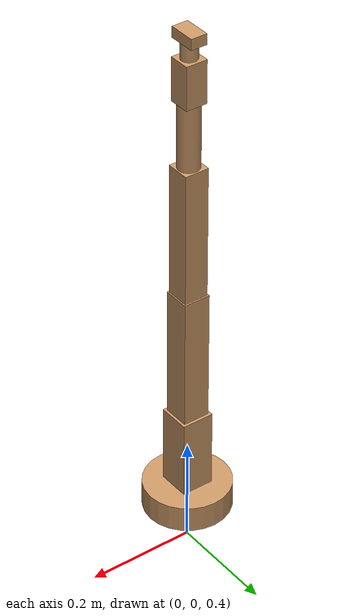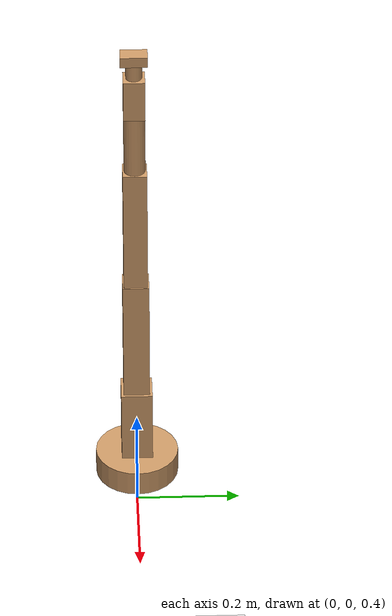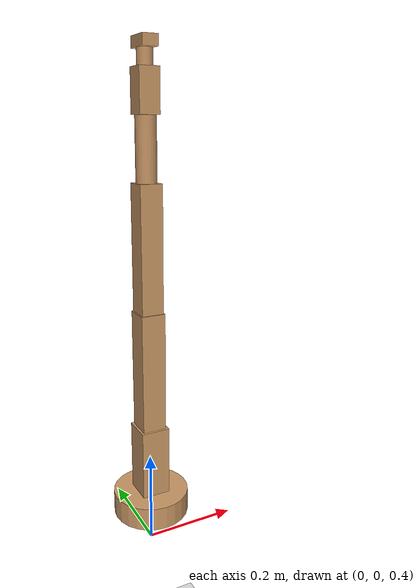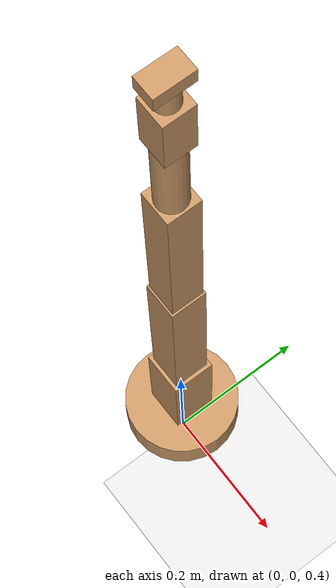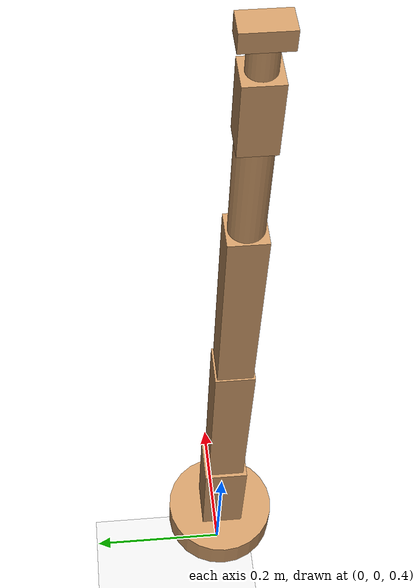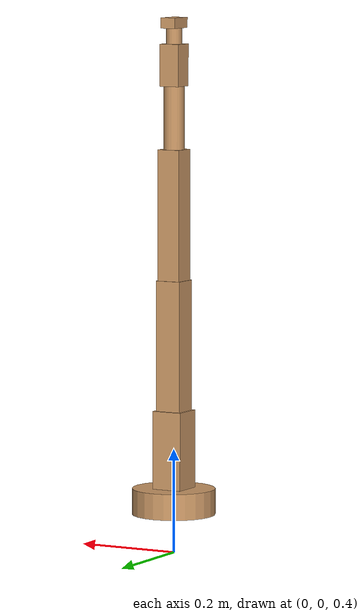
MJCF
<?xml version='1.0' encoding='utf-8'?>
<mujoco model="robotic_arm_6dof">
  <compiler angle="radian" meshdir="D:\ROS2_PROJECT\robotstudio\examples\robotic_arm_6dof\meshes" autolimits="true" />
  <option timestep="0.001" gravity="0 0 -9.81" />
  <default>
    <geom rgba="0.8 0.6 0.4 1" friction="1 0.5 0.5" />
  </default>
  <asset>
    <material name="grey" rgba="0.5 0.5 0.5 1.0" />
    <material name="blue" rgba="0.2 0.3 0.8 1.0" />
    <material name="orange" rgba="0.9 0.5 0.2 1.0" />
    <material name="green" rgba="0.2 0.8 0.3 1.0" />
    <material name="yellow" rgba="0.9 0.9 0.2 1.0" />
    <material name="purple" rgba="0.7 0.2 0.7 1.0" />
    <material name="cyan" rgba="0.2 0.8 0.8 1.0" />
    <material name="red" rgba="0.8 0.2 0.2 1.0" />
  </asset>
  <worldbody>
    <light diffuse="0.5 0.5 0.5" pos="0 0 3" dir="0 0 -1" />
    <geom name="floor" type="plane" size="0 0 1" rgba="0.9 0.9 0.9 1" />
    <body name="base_link" pos="0 0 0.5">
      <freejoint name="base_link_freejoint" />
      <inertial mass="2.0" pos="0 0 0" fullinertia="0.01 0.01 0.01 0 0 0" />
      <geom name="base_link_visual" type="cylinder" group="0" size="0.08 0.025" material="grey" />
      <geom name="base_link_collision" type="cylinder" group="3" rgba="0.5 0.5 0.5 0.3" size="0.08 0.025" />
      <body name="link1" pos="0 0 0.025">
        <joint name="joint1" type="hinge" axis="0 0 1" range="-3.14 3.14" />
        <inertial mass="1.0" pos="0 0 0" fullinertia="0.01 0.01 0.01 0 0 0" />
        <geom name="link1_visual" type="box" group="0" pos="0 0 0.075" size="0.03 0.03 0.075" material="blue" />
        <body name="link2" pos="0 0 0.15">
          <joint name="joint2" type="hinge" axis="0 1 0" range="-1.57 1.57" />
          <inertial mass="0.8" pos="0 0 0" fullinertia="0.008 0.008 0.008 0 0 0" />
          <geom name="link2_visual" type="box" group="0" pos="0 0 0.125" size="0.025 0.025 0.125" material="orange" />
          <body name="link3" pos="0 0 0.25">
            <joint name="joint3" type="hinge" axis="0 1 0" range="-1.57 1.57" />
            <inertial mass="0.6" pos="0 0 0" fullinertia="0.006 0.006 0.006 0 0 0" />
            <geom name="link3_visual" type="box" group="0" pos="0 0 0.125" size="0.0225 0.0225 0.125" material="green" />
            <body name="link4" pos="0 0 0.25">
              <joint name="joint4" type="hinge" axis="0 0 1" range="-3.14 3.14" />
              <inertial mass="0.3" pos="0 0 0" fullinertia="0.003 0.003 0.003 0 0 0" />
              <geom name="link4_visual" type="cylinder" group="0" pos="0 0 0.06" size="0.02 0.06" material="yellow" />
              <body name="link5" pos="0 0 0.12">
                <joint name="joint5" type="hinge" axis="0 1 0" range="-1.57 1.57" />
                <inertial mass="0.2" pos="0 0 0" fullinertia="0.002 0.002 0.002 0 0 0" />
                <geom name="link5_visual" type="box" group="0" pos="0 0 0.04" size="0.02 0.02 0.04" material="purple" />
                <body name="link6" pos="0 0 0.08">
                  <joint name="joint6" type="hinge" axis="0 0 1" range="-3.14 3.14" />
                  <inertial mass="0.1" pos="0 0 0" fullinertia="0.001 0.001 0.001 0 0 0" />
                  <geom name="link6_visual" type="cylinder" group="0" pos="0 0 0.02" size="0.015 0.02" material="cyan" />
                  <body name="ee_link" pos="0 0 0.04">
                    <inertial mass="0.05" pos="0 0 0" fullinertia="0.0005 0.0005 0.0005 0 0 0" />
                    <geom name="ee_link_visual" type="box" group="0" size="0.015 0.025 0.01" material="red" />
                  </body>
                </body>
              </body>
            </body>
          </body>
        </body>
      </body>
    </body>
  </worldbody>
  <actuator>
    <position name="joint1_motor" joint="joint1" kp="10" ctrlrange="-100 100" />
    <position name="joint2_motor" joint="joint2" kp="10" ctrlrange="-80 80" />
    <position name="joint3_motor" joint="joint3" kp="10" ctrlrange="-60 60" />
    <position name="joint4_motor" joint="joint4" kp="10" ctrlrange="-40 40" />
    <position name="joint5_motor" joint="joint5" kp="10" ctrlrange="-30 30" />
    <position name="joint6_motor" joint="joint6" kp="10" ctrlrange="-20 20" />
  </actuator>
  <sensor>
    <jointpos name="joint1_pos" joint="joint1" />
    <jointvel name="joint1_vel" joint="joint1" />
    <jointpos name="joint2_pos" joint="joint2" />
    <jointvel name="joint2_vel" joint="joint2" />
    <jointpos name="joint3_pos" joint="joint3" />
    <jointvel name="joint3_vel" joint="joint3" />
    <jointpos name="joint4_pos" joint="joint4" />
    <jointvel name="joint4_vel" joint="joint4" />
    <jointpos name="joint5_pos" joint="joint5" />
    <jointvel name="joint5_vel" joint="joint5" />
    <jointpos name="joint6_pos" joint="joint6" />
    <jointvel name="joint6_vel" joint="joint6" />
  </sensor>
</mujoco>
